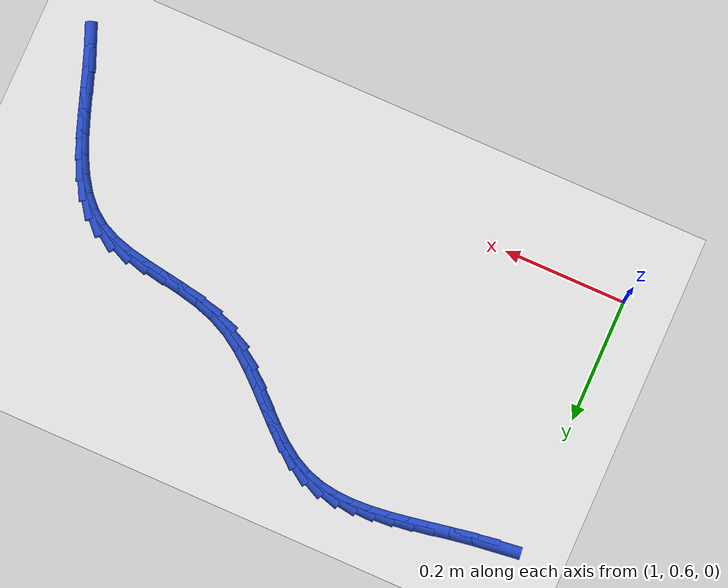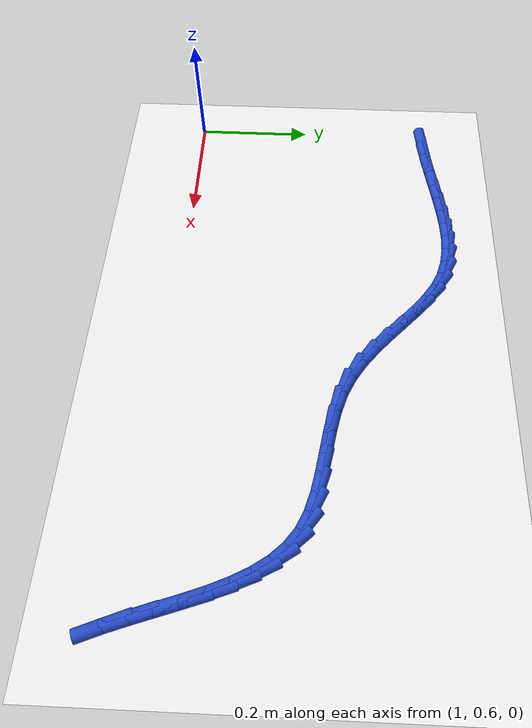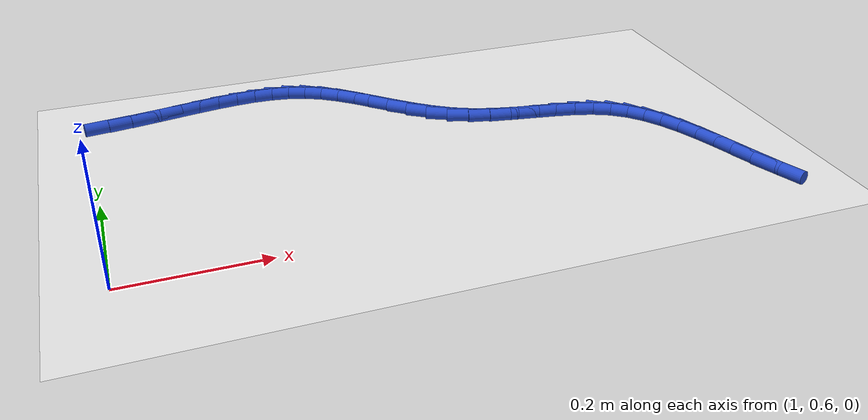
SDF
<sdf version="1.6">
 <world name="default">
  <model name="ground_plane">
   <static>1</static>
   <link name="link">
    <collision name="collision">
     <geometry><plane><normal>0 0 1</normal><size>100 100</size></plane></geometry>
     <surface><friction><ode><mu>100</mu><mu2>50</mu2></ode></friction></surface>
    </collision>
    <visual name="visual">
     <cast_shadows>0</cast_shadows>
     <geometry><plane><normal>0 0 1</normal><size>100 100</size></plane></geometry>
     <material>
      <script><uri>file://media/materials/scripts/gazebo.material</uri><name>Gazebo/WhiteGlow</name></script>
     </material>
    </visual>
   </link>
  </model>
  <model name="line">
   <link name="link_52">
    <pose>1.0307590268013678 1.0266742616894737 0.01 0 1.57 0.12377375846647067</pose>
    <collision name="collision">
     <geometry><cylinder><radius>0.01</radius><length>0.08</length></cylinder></geometry>
    </collision>
    <visual name="visual">
     <material>
      <script><name>Gazebo/Blue</name><uri>file://media/materials/scripts/gazebo.material</uri></script>
     </material>
     <geometry><cylinder><radius>0.01</radius><length>0.08</length></cylinder></geometry>
    </visual>
   </link>
   <link name="link_53">
    <pose>1.0657626907885347 1.0310290578975063 0.01 0 1.57 0.1574418488207378</pose>
    <collision name="collision">
     <geometry><cylinder><radius>0.01</radius><length>0.08</length></cylinder></geometry>
    </collision>
    <visual name="visual">
     <material>
      <script><name>Gazebo/Blue</name><uri>file://media/materials/scripts/gazebo.material</uri></script>
     </material>
     <geometry><cylinder><radius>0.01</radius><length>0.08</length></cylinder></geometry>
    </visual>
   </link>
   <link name="link_54">
    <pose>1.1000490891227852 1.0364722212669004 0.01 0 1.57 0.17458184447944788</pose>
    <collision name="collision">
     <geometry><cylinder><radius>0.01</radius><length>0.08</length></cylinder></geometry>
    </collision>
    <visual name="visual">
     <material>
      <script><name>Gazebo/Blue</name><uri>file://media/materials/scripts/gazebo.material</uri></script>
     </material>
     <geometry><cylinder><radius>0.01</radius><length>0.08</length></cylinder></geometry>
    </visual>
   </link>
   <link name="link_55">
    <pose>1.1335657961989816 1.042383811634247 0.01 0 1.57 0.17438872050696594</pose>
    <collision name="collision">
     <geometry><cylinder><radius>0.01</radius><length>0.08</length></cylinder></geometry>
    </collision>
    <visual name="visual">
     <material>
      <script><name>Gazebo/Blue</name><uri>file://media/materials/scripts/gazebo.material</uri></script>
     </material>
     <geometry><cylinder><radius>0.01</radius><length>0.08</length></cylinder></geometry>
    </visual>
   </link>
   <link name="link_56">
    <pose>1.1662603864119871 1.0481438888361376 0.01 0 1.57 0.1555102897103206</pose>
    <collision name="collision">
     <geometry><cylinder><radius>0.01</radius><length>0.08</length></cylinder></geometry>
    </collision>
    <visual name="visual">
     <material>
      <script><name>Gazebo/Blue</name><uri>file://media/materials/scripts/gazebo.material</uri></script>
     </material>
     <geometry><cylinder><radius>0.01</radius><length>0.08</length></cylinder></geometry>
    </visual>
   </link>
   <link name="link_57">
    <pose>1.1980804341566633 1.0531325127091635 0.01 0 1.57 0.11591928147808699</pose>
    <collision name="collision">
     <geometry><cylinder><radius>0.01</radius><length>0.08</length></cylinder></geometry>
    </collision>
    <visual name="visual">
     <material>
      <script><name>Gazebo/Blue</name><uri>file://media/materials/scripts/gazebo.material</uri></script>
     </material>
     <geometry><cylinder><radius>0.01</radius><length>0.08</length></cylinder></geometry>
    </visual>
   </link>
   <link name="link_58">
    <pose>1.2289735138278726 1.056729743089917 0.01 0 1.57 0.05296617123826797</pose>
    <collision name="collision">
     <geometry><cylinder><radius>0.01</radius><length>0.08</length></cylinder></geometry>
    </collision>
    <visual name="visual">
     <material>
      <script><name>Gazebo/Blue</name><uri>file://media/materials/scripts/gazebo.material</uri></script>
     </material>
     <geometry><cylinder><radius>0.01</radius><length>0.08</length></cylinder></geometry>
    </visual>
   </link>
   <link name="link_59">
    <pose>1.2588871998204771 1.058315639814988 0.01 0 1.57 -0.036179134691694134</pose>
    <collision name="collision">
     <geometry><cylinder><radius>0.01</radius><length>0.08</length></cylinder></geometry>
    </collision>
    <visual name="visual">
     <material>
      <script><name>Gazebo/Blue</name><uri>file://media/materials/scripts/gazebo.material</uri></script>
     </material>
     <geometry><cylinder><radius>0.01</radius><length>0.08</length></cylinder></geometry>
    </visual>
   </link>
   <link name="link_60">
    <pose>1.2877690665293402 1.057270262720969 0.01 0 1.57 -0.15335329292305747</pose>
    <collision name="collision">
     <geometry><cylinder><radius>0.01</radius><length>0.08</length></cylinder></geometry>
    </collision>
    <visual name="visual">
     <material>
      <script><name>Gazebo/Blue</name><uri>file://media/materials/scripts/gazebo.material</uri></script>
     </material>
     <geometry><cylinder><radius>0.01</radius><length>0.08</length></cylinder></geometry>
    </visual>
   </link>
   <link name="link_61">
    <pose>1.3155666883493224 1.0529736716444504 0.01 0 1.57 -0.29727783499345267</pose>
    <collision name="collision">
     <geometry><cylinder><radius>0.01</radius><length>0.08</length></cylinder></geometry>
    </collision>
    <visual name="visual">
     <material>
      <script><name>Gazebo/Blue</name><uri>file://media/materials/scripts/gazebo.material</uri></script>
     </material>
     <geometry><cylinder><radius>0.01</radius><length>0.08</length></cylinder></geometry>
    </visual>
   </link>
   <link name="link_62">
    <pose>1.3422276396752877 1.0448059264220246 0.01 0 1.57 -0.4601765413912949</pose>
    <collision name="collision">
     <geometry><cylinder><radius>0.01</radius><length>0.08</length></cylinder></geometry>
    </collision>
    <visual name="visual">
     <material>
      <script><name>Gazebo/Blue</name><uri>file://media/materials/scripts/gazebo.material</uri></script>
     </material>
     <geometry><cylinder><radius>0.01</radius><length>0.08</length></cylinder></geometry>
    </visual>
   </link>
   <link name="link_63">
    <pose>1.3677074951348573 1.0321763604750855 0.01 0 1.57 -0.6034465025718819</pose>
    <collision name="collision">
     <geometry><cylinder><radius>0.01</radius><length>0.08</length></cylinder></geometry>
    </collision>
    <visual name="visual">
     <material>
      <script><name>Gazebo/Blue</name><uri>file://media/materials/scripts/gazebo.material</uri></script>
     </material>
     <geometry><cylinder><radius>0.01</radius><length>0.08</length></cylinder></geometry>
    </visual>
   </link>
   <link name="link_64">
    <pose>1.392183930482686 1.0153069956020342 0.01 0 1.57 -0.6965867125941612</pose>
    <collision name="collision">
     <geometry><cylinder><radius>0.01</radius><length>0.08</length></cylinder></geometry>
    </collision>
    <visual name="visual">
     <material>
      <script><name>Gazebo/Blue</name><uri>file://media/materials/scripts/gazebo.material</uri></script>
     </material>
     <geometry><cylinder><radius>0.01</radius><length>0.08</length></cylinder></geometry>
    </visual>
   </link>
   <link name="link_65">
    <pose>1.416080206524041 0.9953184718067046 0.01 0 1.57 -0.7457722344801025</pose>
    <collision name="collision">
     <geometry><cylinder><radius>0.01</radius><length>0.08</length></cylinder></geometry>
    </collision>
    <visual name="visual">
     <material>
      <script><name>Gazebo/Blue</name><uri>file://media/materials/scripts/gazebo.material</uri></script>
     </material>
     <geometry><cylinder><radius>0.01</radius><length>0.08</length></cylinder></geometry>
    </visual>
   </link>
   <link name="link_66">
    <pose>1.439832295960853 0.9733779430877325 0.01 0 1.57 -0.7572141190885201</pose>
    <collision name="collision">
     <geometry><cylinder><radius>0.01</radius><length>0.08</length></cylinder></geometry>
    </collision>
    <visual name="visual">
     <material>
      <script><name>Gazebo/Blue</name><uri>file://media/materials/scripts/gazebo.material</uri></script>
     </material>
     <geometry><cylinder><radius>0.01</radius><length>0.08</length></cylinder></geometry>
    </visual>
   </link>
   <link name="link_67">
    <pose>1.463876171495053 0.9506525634437559 0.01 0 1.57 -0.7338981056736787</pose>
    <collision name="collision">
     <geometry><cylinder><radius>0.01</radius><length>0.08</length></cylinder></geometry>
    </collision>
    <visual name="visual">
     <material>
      <script><name>Gazebo/Blue</name><uri>file://media/materials/scripts/gazebo.material</uri></script>
     </material>
     <geometry><cylinder><radius>0.01</radius><length>0.08</length></cylinder></geometry>
    </visual>
   </link>
   <link name="link_68">
    <pose>1.4886478058285726 0.928309486873411 0.01 0 1.57 -0.6758056952132081</pose>
    <collision name="collision">
     <geometry><cylinder><radius>0.01</radius><length>0.08</length></cylinder></geometry>
    </collision>
    <visual name="visual">
     <material>
      <script><name>Gazebo/Blue</name><uri>file://media/materials/scripts/gazebo.material</uri></script>
     </material>
     <geometry><cylinder><radius>0.01</radius><length>0.08</length></cylinder></geometry>
    </visual>
   </link>
   <link name="link_69">
    <pose>1.5145831716633429 0.9075158673753343 0.01 0 1.57 -0.580937040287492</pose>
    <collision name="collision">
     <geometry><cylinder><radius>0.01</radius><length>0.08</length></cylinder></geometry>
    </collision>
    <visual name="visual">
     <material>
      <script><name>Gazebo/Blue</name><uri>file://media/materials/scripts/gazebo.material</uri></script>
     </material>
     <geometry><cylinder><radius>0.01</radius><length>0.08</length></cylinder></geometry>
    </visual>
   </link>
   <link name="link_70">
    <pose>1.5421182417012942 0.8894388589481631 0.01 0 1.57 -0.44809035127467833</pose>
    <collision name="collision">
     <geometry><cylinder><radius>0.01</radius><length>0.08</length></cylinder></geometry>
    </collision>
    <visual name="visual">
     <material>
      <script><name>Gazebo/Blue</name><uri>file://media/materials/scripts/gazebo.material</uri></script>
     </material>
     <geometry><cylinder><radius>0.01</radius><length>0.08</length></cylinder></geometry>
    </visual>
   </link>
   <link name="link_71">
    <pose>1.5716801184723497 0.8752284061619208 0.01 0 1.57 -0.31081601795616426</pose>
    <collision name="collision">
     <geometry><cylinder><radius>0.01</radius><length>0.08</length></cylinder></geometry>
    </collision>
    <visual name="visual">
     <material>
      <script><name>Gazebo/Blue</name><uri>file://media/materials/scripts/gazebo.material</uri></script>
     </material>
     <geometry><cylinder><radius>0.01</radius><length>0.08</length></cylinder></geometry>
    </visual>
   </link>
   <link name="link_72">
    <pose>1.6032137205505768 0.8650989463204088 0.01 0 1.57 -0.21742986659875418</pose>
    <collision name="collision">
     <geometry><cylinder><radius>0.01</radius><length>0.08</length></cylinder></geometry>
    </collision>
    <visual name="visual">
     <material>
      <script><name>Gazebo/Blue</name><uri>file://media/materials/scripts/gazebo.material</uri></script>
     </material>
     <geometry><cylinder><radius>0.01</radius><length>0.08</length></cylinder></geometry>
    </visual>
   </link>
   <link name="link_73">
    <pose>1.635944009600703 0.8578680952200413 0.01 0 1.57 -0.16847662399609248</pose>
    <collision name="collision">
     <geometry><cylinder><radius>0.01</radius><length>0.08</length></cylinder></geometry>
    </collision>
    <visual name="visual">
     <material>
      <script><name>Gazebo/Blue</name><uri>file://media/materials/scripts/gazebo.material</uri></script>
     </material>
     <geometry><cylinder><radius>0.01</radius><length>0.08</length></cylinder></geometry>
    </visual>
   </link>
   <link name="link_74">
    <pose>1.6690371138983886 0.8522393232936207 0.01 0 1.57 -0.16175304164483764</pose>
    <collision name="collision">
     <geometry><cylinder><radius>0.01</radius><length>0.08</length></cylinder></geometry>
    </collision>
    <visual name="visual">
     <material>
      <script><name>Gazebo/Blue</name><uri>file://media/materials/scripts/gazebo.material</uri></script>
     </material>
     <geometry><cylinder><radius>0.01</radius><length>0.08</length></cylinder></geometry>
    </visual>
   </link>
   <link name="link_75">
    <pose>1.7016591617192947 0.8469161009739502 0.01 0 1.57 -0.19895413496557662</pose>
    <collision name="collision">
     <geometry><cylinder><radius>0.01</radius><length>0.08</length></cylinder></geometry>
    </collision>
    <visual name="visual">
     <material>
      <script><name>Gazebo/Blue</name><uri>file://media/materials/scripts/gazebo.material</uri></script>
     </material>
     <geometry><cylinder><radius>0.01</radius><length>0.08</length></cylinder></geometry>
    </visual>
   </link>
   <link name="link_76">
    <pose>1.7329762813390812 0.8406018986938322 0.01 0 1.57 -0.28667755892583996</pose>
    <collision name="collision">
     <geometry><cylinder><radius>0.01</radius><length>0.08</length></cylinder></geometry>
    </collision>
    <visual name="visual">
     <material>
      <script><name>Gazebo/Blue</name><uri>file://media/materials/scripts/gazebo.material</uri></script>
     </material>
     <geometry><cylinder><radius>0.01</radius><length>0.08</length></cylinder></geometry>
    </visual>
   </link>
   <link name="link_77">
    <pose>1.7621546010334086 0.8320001868860695 0.01 0 1.57 -0.43526158104750323</pose>
    <collision name="collision">
     <geometry><cylinder><radius>0.01</radius><length>0.08</length></cylinder></geometry>
    </collision>
    <visual name="visual">
     <material>
      <script><name>Gazebo/Blue</name><uri>file://media/materials/scripts/gazebo.material</uri></script>
     </material>
     <geometry><cylinder><radius>0.01</radius><length>0.08</length></cylinder></geometry>
    </visual>
   </link>
   <link name="link_78">
    <pose>1.7883602490779378 0.8198144359834652 0.01 0 1.57 -0.6373173418494269</pose>
    <collision name="collision">
     <geometry><cylinder><radius>0.01</radius><length>0.08</length></cylinder></geometry>
    </collision>
    <visual name="visual">
     <material>
      <script><name>Gazebo/Blue</name><uri>file://media/materials/scripts/gazebo.material</uri></script>
     </material>
     <geometry><cylinder><radius>0.01</radius><length>0.08</length></cylinder></geometry>
    </visual>
   </link>
   <link name="link_79">
    <pose>1.8109855847463407 0.8030630368696812 0.01 0 1.57 -0.8263623081606352</pose>
    <collision name="collision">
     <geometry><cylinder><radius>0.01</radius><length>0.08</length></cylinder></geometry>
    </collision>
    <visual name="visual">
     <material>
      <script><name>Gazebo/Blue</name><uri>file://media/materials/scripts/gazebo.material</uri></script>
     </material>
     <geometry><cylinder><radius>0.01</radius><length>0.08</length></cylinder></geometry>
    </visual>
   </link>
   <link name="link_80">
    <pose>1.8303453821268945 0.7820484099904159 0.01 0 1.57 -0.9768643043244373</pose>
    <collision name="collision">
     <geometry><cylinder><radius>0.01</radius><length>0.08</length></cylinder></geometry>
    </collision>
    <visual name="visual">
     <material>
      <script><name>Gazebo/Blue</name><uri>file://media/materials/scripts/gazebo.material</uri></script>
     </material>
     <geometry><cylinder><radius>0.01</radius><length>0.08</length></cylinder></geometry>
    </visual>
   </link>
   <link name="link_81">
    <pose>1.846989475903977 0.7574001873121311 0.01 0 1.57 -1.0884605117239807</pose>
    <collision name="collision">
     <geometry><cylinder><radius>0.01</radius><length>0.08</length></cylinder></geometry>
    </collision>
    <visual name="visual">
     <material>
      <script><name>Gazebo/Blue</name><uri>file://media/materials/scripts/gazebo.material</uri></script>
     </material>
     <geometry><cylinder><radius>0.01</radius><length>0.08</length></cylinder></geometry>
    </visual>
   </link>
   <link name="link_82">
    <pose>1.8614677008218918 0.7297480008847058 0.01 0 1.57 -1.1660822884992637</pose>
    <collision name="collision">
     <geometry><cylinder><radius>0.01</radius><length>0.08</length></cylinder></geometry>
    </collision>
    <visual name="visual">
     <material>
      <script><name>Gazebo/Blue</name><uri>file://media/materials/scripts/gazebo.material</uri></script>
     </material>
     <geometry><cylinder><radius>0.01</radius><length>0.08</length></cylinder></geometry>
    </visual>
   </link>
   <link name="link_83">
    <pose>1.87432989162494 0.6997214827580195 0.01 0 1.57 -1.2152917359677446</pose>
    <collision name="collision">
     <geometry><cylinder><radius>0.01</radius><length>0.08</length></cylinder></geometry>
    </collision>
    <visual name="visual">
     <material>
      <script><name>Gazebo/Blue</name><uri>file://media/materials/scripts/gazebo.material</uri></script>
     </material>
     <geometry><cylinder><radius>0.01</radius><length>0.08</length></cylinder></geometry>
    </visual>
   </link>
   <link name="link_84">
    <pose>1.8861258830574252 0.6679502649819506 0.01 0 1.57 -1.240381188543048</pose>
    <collision name="collision">
     <geometry><cylinder><radius>0.01</radius><length>0.08</length></cylinder></geometry>
    </collision>
    <visual name="visual">
     <material>
      <script><name>Gazebo/Blue</name><uri>file://media/materials/scripts/gazebo.material</uri></script>
     </material>
     <geometry><cylinder><radius>0.01</radius><length>0.08</length></cylinder></geometry>
    </visual>
   </link>
   <link name="link_85">
    <pose>1.89740550986365 0.6350639796063776 0.01 0 1.57 -1.2439522266429992</pose>
    <collision name="collision">
     <geometry><cylinder><radius>0.01</radius><length>0.08</length></cylinder></geometry>
    </collision>
    <visual name="visual">
     <material>
      <script><name>Gazebo/Blue</name><uri>file://media/materials/scripts/gazebo.material</uri></script>
     </material>
     <geometry><cylinder><radius>0.01</radius><length>0.08</length></cylinder></geometry>
    </visual>
   </link>
   <link name="link_86">
    <pose>1.9087186067879163 0.6016922586811804 0.01 0 1.57 -1.2269871215727104</pose>
    <collision name="collision">
     <geometry><cylinder><radius>0.01</radius><length>0.08</length></cylinder></geometry>
    </collision>
    <visual name="visual">
     <material>
      <script><name>Gazebo/Blue</name><uri>file://media/materials/scripts/gazebo.material</uri></script>
     </material>
     <geometry><cylinder><radius>0.01</radius><length>0.08</length></cylinder></geometry>
    </visual>
   </link>
   <link name="link_87">
    <pose>1.9206150085745262 0.5684647342562369 0.01 0 1.57 -1.18901390127267</pose>
    <collision name="collision">
     <geometry><cylinder><radius>0.01</radius><length>0.08</length></cylinder></geometry>
    </collision>
    <visual name="visual">
     <material>
      <script><name>Gazebo/Blue</name><uri>file://media/materials/scripts/gazebo.material</uri></script>
     </material>
     <geometry><cylinder><radius>0.01</radius><length>0.08</length></cylinder></geometry>
    </visual>
   </link>
  </model>
 </world>
</sdf>
